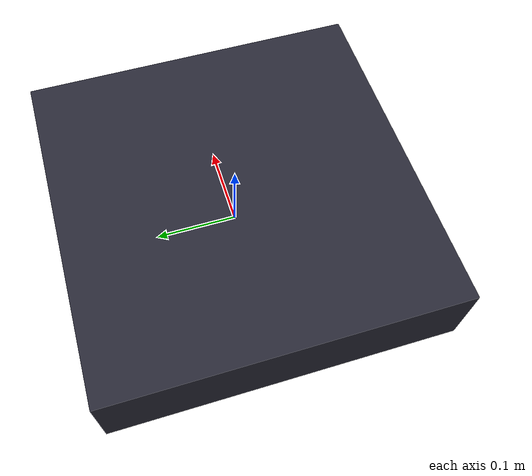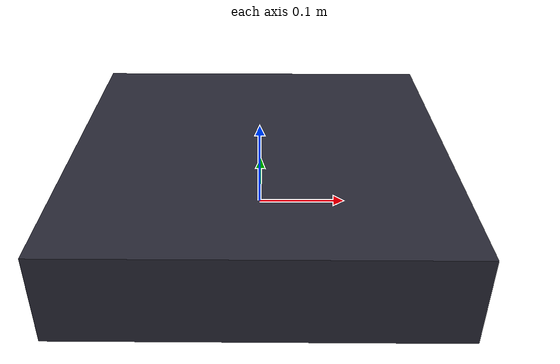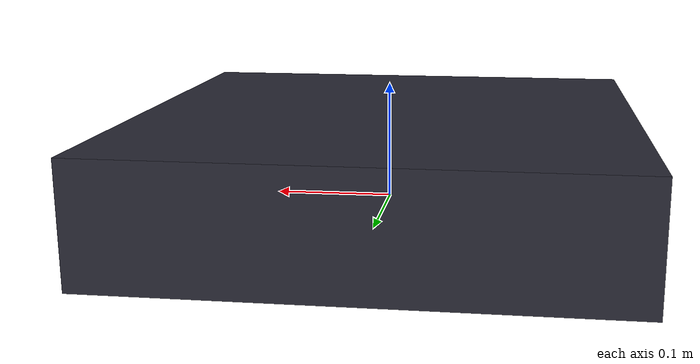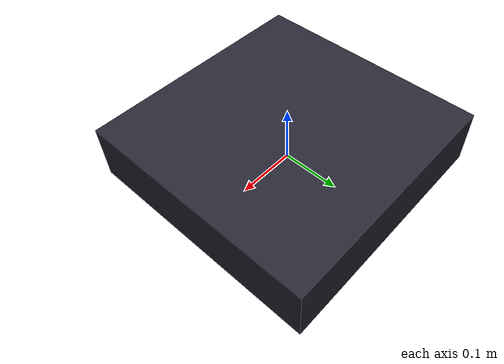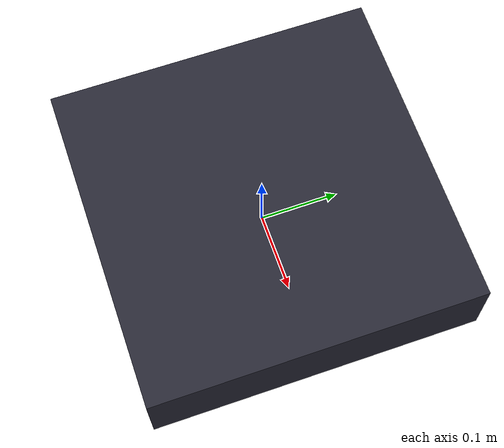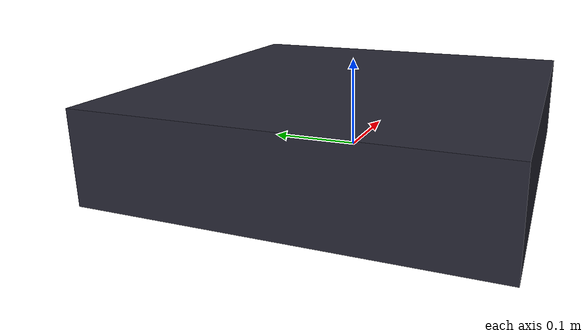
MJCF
<?xml version="1.0" ?>
<mujoco model="jx_fly">

  <!-- Defaults -->
  <option gravity="0 0 -9.80665" integrator="Euler" timestep="0.005"/>

  <worldbody>
    <!-- Airframe: freejoint, full 6-DOF -->
    <body name="airframe" pos="0 0 0">
      <freejoint name="root"/>
      <inertial
        pos="0 0 0"
        mass="1.2961"
        diaginertia="0.00839 0.00930 0.01485"/>
      <geom type="box" size="0.21 0.21 0.05" pos="0 0 0.0262"
            rgba="0.15 0.15 0.2 1" mass="0"/>
    </body>
  </worldbody>

</mujoco>
